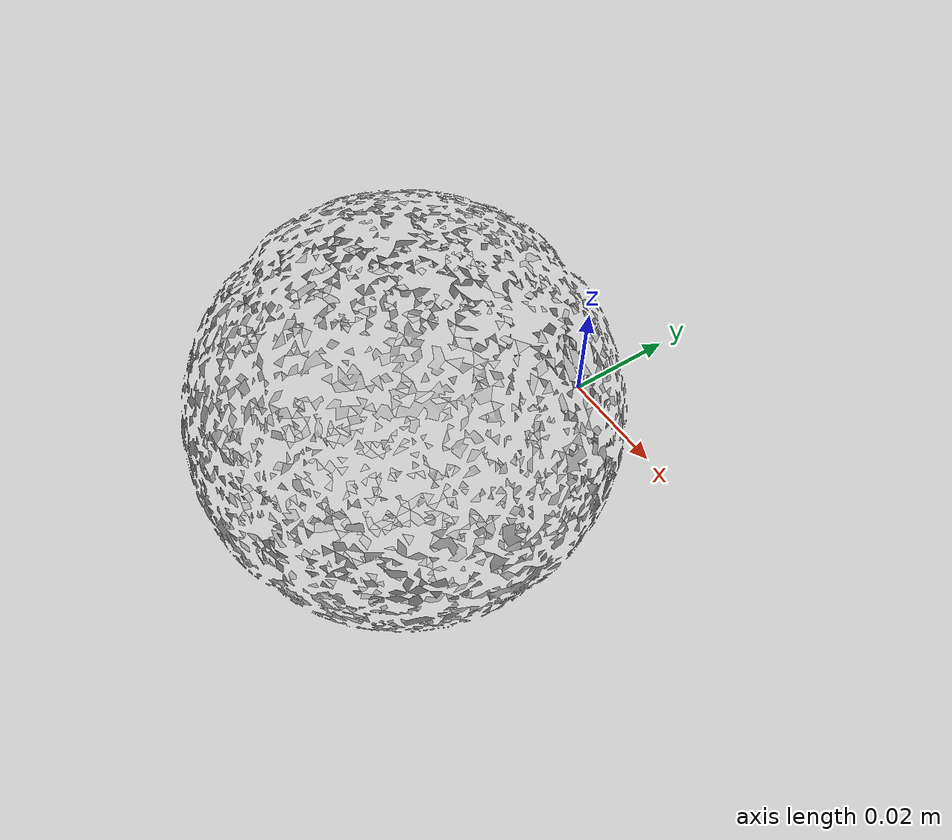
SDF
<?xml version='1.0'?>
<sdf version="1.4">
  <model name="tennis_ball">
    <static>false</static>
    <link name="link">
      <inertial>
        <pose>0.008233239762589124 -0.044192426304665286 0.03288662063700162 -2.981037911586889 -1.017028758597156 -2.748123242054311</pose>
        <mass>0.00015596837466282982</mass>
        <inertia>
          <ixx>6.980131429454366e-08</ixx>
          <ixy>-1.6995308950649315e-23</ixy>
          <ixz>6.770465303416367e-24</ixz>
          <iyy>6.951004823297155e-08</iyy>
          <iyz>1.2326749863795835e-24</iyz>
          <izz>6.942650877097581e-08</izz>
        </inertia>
      </inertial>
      <collision name="collision">
        <geometry>
          <mesh>
            <!-- Use a downsampled mesh for collisions -->
            <uri>model://056_tennis_ball/downsampled.obj</uri>
	        </mesh>
        </geometry>
        <surface>
      </surface>
      </collision>
      <visual name="visual">
        <geometry>
          <mesh>
            <uri>model://056_tennis_ball/google_16k/textured.obj</uri>
	        </mesh>
        </geometry>
        <material>
          <script>
            <uri>model://056_tennis_ball/tennis_ball.material</uri>
            <name>tennis_ball</name>
          </script>
        </material>
      </visual>
    </link>
  </model>
</sdf>
